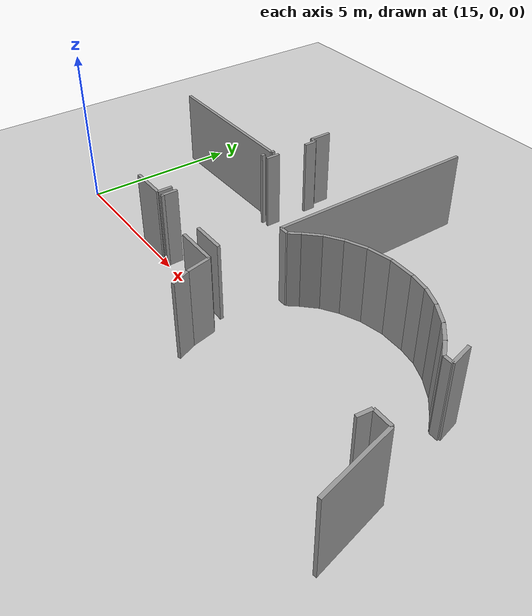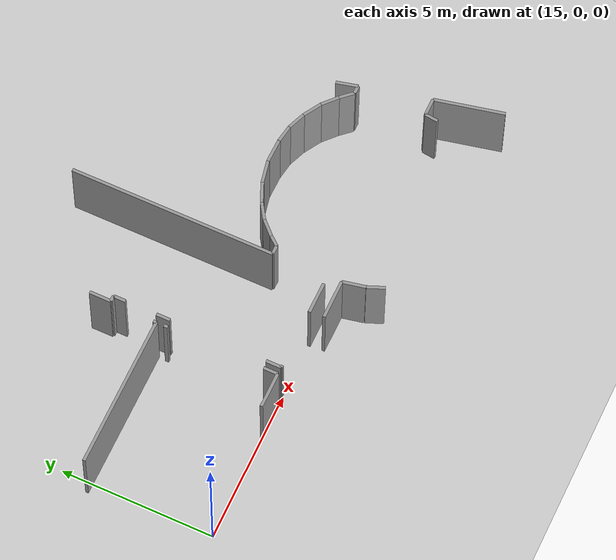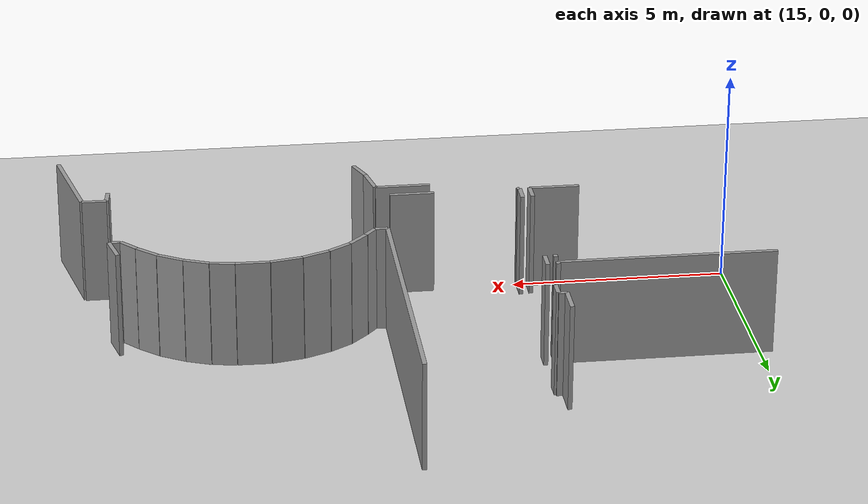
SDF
<sdf version="1.6">
 <world name="default">
  <model name="ground_plane">
   <static>1</static>
   <link name="link">
    <collision name="collision">
     <geometry><plane><normal>0 0 1</normal><size>100 100</size></plane></geometry>
     <surface><friction><ode><mu>100</mu><mu2>50</mu2></ode></friction></surface>
    </collision>
    <visual name="visual">
     <cast_shadows>0</cast_shadows>
     <geometry><plane><normal>0 0 1</normal><size>100 100</size></plane></geometry>
     <material>
      <script><uri>file://media/materials/scripts/gazebo.material</uri><name>Gazebo/Grey</name></script>
     </material>
    </visual>
   </link>
  </model>
  <model name="50041193">
   <static>1</static>
   <link name="Wall_119">
    <collision name="Wall_119_Collision">
     <geometry><box><size>1.27543304485 0.1 2.5</size></box></geometry>
     <pose>0.637716522424 0 1.25 0 0 0</pose>
    </collision>
    <visual name="Wall_119_Visual">
     <pose>0.637716522424 0 1.25 0 0 0</pose>
     <geometry><box><size>1.27543304485 0.1 2.5</size></box></geometry>
     <material>
      <script><uri>file://media/materials/scripts/gazebo.material</uri><name>Gazebo/Grey</name></script>
      <ambient>1 1 1 1</ambient>
     </material>
    </visual>
    <pose>53.6279182076 -53.474080852 0 0 0 0.0</pose>
   </link>
   <link name="Wall_120">
    <collision name="Wall_120_Collision">
     <geometry><box><size>0.751546595955 0.1 2.5</size></box></geometry>
     <pose>0.375773297978 0 1.25 0 0 0</pose>
    </collision>
    <visual name="Wall_120_Visual">
     <pose>0.375773297978 0 1.25 0 0 0</pose>
     <geometry><box><size>0.751546595955 0.1 2.5</size></box></geometry>
     <material>
      <script><uri>file://media/materials/scripts/gazebo.material</uri><name>Gazebo/Grey</name></script>
      <ambient>1 1 1 1</ambient>
     </material>
    </visual>
    <pose>54.9033512524 -53.474080852 0 0 0 -1.36507674603</pose>
   </link>
   <link name="Wall_121">
    <collision name="Wall_121_Collision">
     <geometry><box><size>0.593920546967 0.1 2.5</size></box></geometry>
     <pose>0.296960273483 0 1.25 0 0 0</pose>
    </collision>
    <visual name="Wall_121_Visual">
     <pose>0.296960273483 0 1.25 0 0 0</pose>
     <geometry><box><size>0.593920546967 0.1 2.5</size></box></geometry>
     <material>
      <script><uri>file://media/materials/scripts/gazebo.material</uri><name>Gazebo/Grey</name></script>
      <ambient>1 1 1 1</ambient>
     </material>
    </visual>
    <pose>55.0568708935 -54.2097805228 0 0 0 -1.1816674184</pose>
   </link>
   <link name="Wall_133">
    <collision name="Wall_133_Collision">
     <geometry><box><size>0.425947187988 0.1 2.5</size></box></geometry>
     <pose>0.212973593994 0 1.25 0 0 0</pose>
    </collision>
    <visual name="Wall_133_Visual">
     <pose>0.212973593994 0 1.25 0 0 0</pose>
     <geometry><box><size>0.425947187988 0.1 2.5</size></box></geometry>
     <material>
      <script><uri>file://media/materials/scripts/gazebo.material</uri><name>Gazebo/Grey</name></script>
      <ambient>1 1 1 1</ambient>
     </material>
    </visual>
    <pose>61.0785771474 -53.8691905906 0 0 0 1.45447195048</pose>
   </link>
   <link name="Wall_134">
    <collision name="Wall_134_Collision">
     <geometry><box><size>0.565913047899 0.1 2.5</size></box></geometry>
     <pose>0.282956523949 0 1.25 0 0 0</pose>
    </collision>
    <visual name="Wall_134_Visual">
     <pose>0.282956523949 0 1.25 0 0 0</pose>
     <geometry><box><size>0.565913047899 0.1 2.5</size></box></geometry>
     <material>
      <script><uri>file://media/materials/scripts/gazebo.material</uri><name>Gazebo/Grey</name></script>
      <ambient>1 1 1 1</ambient>
     </material>
    </visual>
    <pose>61.1280135219 -53.4461219769 0 0 0 0.0</pose>
   </link>
   <link name="Wall_135">
    <collision name="Wall_135_Collision">
     <geometry><box><size>2.26757541259 0.1 2.5</size></box></geometry>
     <pose>1.1337877063 0 1.25 0 0 0</pose>
    </collision>
    <visual name="Wall_135_Visual">
     <pose>1.1337877063 0 1.25 0 0 0</pose>
     <geometry><box><size>2.26757541259 0.1 2.5</size></box></geometry>
     <material>
      <script><uri>file://media/materials/scripts/gazebo.material</uri><name>Gazebo/Grey</name></script>
      <ambient>1 1 1 1</ambient>
     </material>
    </visual>
    <pose>61.6939265698 -53.4461219769 0 0 0 -1.35342826832</pose>
   </link>
   <link name="Wall_202">
    <collision name="Wall_202_Collision">
     <geometry><box><size>0.102304065475 0.1 2.5</size></box></geometry>
     <pose>0.0511520327373 0 1.25 0 0 0</pose>
    </collision>
    <visual name="Wall_202_Visual">
     <pose>0.0511520327373 0 1.25 0 0 0</pose>
     <geometry><box><size>0.102304065475 0.1 2.5</size></box></geometry>
     <material>
      <script><uri>file://media/materials/scripts/gazebo.material</uri><name>Gazebo/Grey</name></script>
      <ambient>1 1 1 1</ambient>
     </material>
    </visual>
    <pose>51.3459656614 -48.8995005528 0 0 0 -1.57079632679</pose>
   </link>
   <link name="Wall_203">
    <collision name="Wall_203_Collision">
     <geometry><box><size>4.94617916555 0.1 2.5</size></box></geometry>
     <pose>2.47308958278 0 1.25 0 0 0</pose>
    </collision>
    <visual name="Wall_203_Visual">
     <pose>2.47308958278 0 1.25 0 0 0</pose>
     <geometry><box><size>4.94617916555 0.1 2.5</size></box></geometry>
     <material>
      <script><uri>file://media/materials/scripts/gazebo.material</uri><name>Gazebo/Grey</name></script>
      <ambient>1 1 1 1</ambient>
     </material>
    </visual>
    <pose>51.3459656614 -49.0018046183 0 0 0 3.14159265359</pose>
   </link>
   <link name="Wall_290">
    <collision name="Wall_290_Collision">
     <geometry><box><size>6.71368841105 0.1 2.5</size></box></geometry>
     <pose>3.35684420552 0 1.25 0 0 0</pose>
    </collision>
    <visual name="Wall_290_Visual">
     <pose>3.35684420552 0 1.25 0 0 0</pose>
     <geometry><box><size>6.71368841105 0.1 2.5</size></box></geometry>
     <material>
      <script><uri>file://media/materials/scripts/gazebo.material</uri><name>Gazebo/Grey</name></script>
      <ambient>1 1 1 1</ambient>
     </material>
    </visual>
    <pose>54.8729777473 -51.199499282 0 0 0 1.57079632679</pose>
   </link>
   <link name="Wall_297">
    <collision name="Wall_297_Collision">
     <geometry><box><size>0.702463789494 0.1 2.5</size></box></geometry>
     <pose>0.351231894747 0 1.25 0 0 0</pose>
    </collision>
    <visual name="Wall_297_Visual">
     <pose>0.351231894747 0 1.25 0 0 0</pose>
     <geometry><box><size>0.702463789494 0.1 2.5</size></box></geometry>
     <material>
      <script><uri>file://media/materials/scripts/gazebo.material</uri><name>Gazebo/Grey</name></script>
      <ambient>1 1 1 1</ambient>
     </material>
    </visual>
    <pose>60.9779251973 -50.4917584862 0 0 0 -1.33152185805</pose>
   </link>
   <link name="Wall_298">
    <collision name="Wall_298_Collision">
     <geometry><box><size>0.263703025913 0.1 2.5</size></box></geometry>
     <pose>0.131851512956 0 1.25 0 0 0</pose>
    </collision>
    <visual name="Wall_298_Visual">
     <pose>0.131851512956 0 1.25 0 0 0</pose>
     <geometry><box><size>0.263703025913 0.1 2.5</size></box></geometry>
     <material>
      <script><uri>file://media/materials/scripts/gazebo.material</uri><name>Gazebo/Grey</name></script>
      <ambient>1 1 1 1</ambient>
     </material>
    </visual>
    <pose>61.1444075896 -51.1742092086 0 0 0 3.14159265359</pose>
   </link>
   <link name="Wall_299">
    <collision name="Wall_299_Collision">
     <geometry><box><size>0.503759629932 0.1 2.5</size></box></geometry>
     <pose>0.251879814966 0 1.25 0 0 0</pose>
    </collision>
    <visual name="Wall_299_Visual">
     <pose>0.251879814966 0 1.25 0 0 0</pose>
     <geometry><box><size>0.503759629932 0.1 2.5</size></box></geometry>
     <material>
      <script><uri>file://media/materials/scripts/gazebo.material</uri><name>Gazebo/Grey</name></script>
      <ambient>1 1 1 1</ambient>
     </material>
    </visual>
    <pose>60.8807045637 -51.1742092086 0 0 0 2.31051200912</pose>
   </link>
   <link name="Wall_300">
    <collision name="Wall_300_Collision">
     <geometry><box><size>0.598465363036 0.1 2.5</size></box></geometry>
     <pose>0.299232681518 0 1.25 0 0 0</pose>
    </collision>
    <visual name="Wall_300_Visual">
     <pose>0.299232681518 0 1.25 0 0 0</pose>
     <geometry><box><size>0.598465363036 0.1 2.5</size></box></geometry>
     <material>
      <script><uri>file://media/materials/scripts/gazebo.material</uri><name>Gazebo/Grey</name></script>
      <ambient>1 1 1 1</ambient>
     </material>
    </visual>
    <pose>60.5411313178 -50.8021019991 0 0 0 2.40742012228</pose>
   </link>
   <link name="Wall_301">
    <collision name="Wall_301_Collision">
     <geometry><box><size>0.649745379129 0.1 2.5</size></box></geometry>
     <pose>0.324872689564 0 1.25 0 0 0</pose>
    </collision>
    <visual name="Wall_301_Visual">
     <pose>0.324872689564 0 1.25 0 0 0</pose>
     <geometry><box><size>0.649745379129 0.1 2.5</size></box></geometry>
     <material>
      <script><uri>file://media/materials/scripts/gazebo.material</uri><name>Gazebo/Grey</name></script>
      <ambient>1 1 1 1</ambient>
     </material>
    </visual>
    <pose>60.0968393763 -50.4011463139 0 0 0 2.60764718316</pose>
   </link>
   <link name="Wall_302">
    <collision name="Wall_302_Collision">
     <geometry><box><size>0.600564026487 0.1 2.5</size></box></geometry>
     <pose>0.300282013244 0 1.25 0 0 0</pose>
    </collision>
    <visual name="Wall_302_Visual">
     <pose>0.300282013244 0 1.25 0 0 0</pose>
     <geometry><box><size>0.600564026487 0.1 2.5</size></box></geometry>
     <material>
      <script><uri>file://media/materials/scripts/gazebo.material</uri><name>Gazebo/Grey</name></script>
      <ambient>1 1 1 1</ambient>
     </material>
    </visual>
    <pose>59.5375347897 -50.0704690737 0 0 0 2.7670198755</pose>
   </link>
   <link name="Wall_303">
    <collision name="Wall_303_Collision">
     <geometry><box><size>0.563910593662 0.1 2.5</size></box></geometry>
     <pose>0.281955296831 0 1.25 0 0 0</pose>
    </collision>
    <visual name="Wall_303_Visual">
     <pose>0.281955296831 0 1.25 0 0 0</pose>
     <geometry><box><size>0.563910593662 0.1 2.5</size></box></geometry>
     <material>
      <script><uri>file://media/materials/scripts/gazebo.material</uri><name>Gazebo/Grey</name></script>
      <ambient>1 1 1 1</ambient>
     </material>
    </visual>
    <pose>58.9786114606 -49.850737733 0 0 0 2.98363169974</pose>
   </link>
   <link name="Wall_304">
    <collision name="Wall_304_Collision">
     <geometry><box><size>0.772911131109 0.1 2.5</size></box></geometry>
     <pose>0.386455565554 0 1.25 0 0 0</pose>
    </collision>
    <visual name="Wall_304_Visual">
     <pose>0.386455565554 0 1.25 0 0 0</pose>
     <geometry><box><size>0.772911131109 0.1 2.5</size></box></geometry>
     <material>
      <script><uri>file://media/materials/scripts/gazebo.material</uri><name>Gazebo/Grey</name></script>
      <ambient>1 1 1 1</ambient>
     </material>
    </visual>
    <pose>58.4217215042 -49.7620318477 0 0 0 3.12531387462</pose>
   </link>
   <link name="Wall_305">
    <collision name="Wall_305_Collision">
     <geometry><box><size>0.746290253607 0.1 2.5</size></box></geometry>
     <pose>0.373145126804 0 1.25 0 0 0</pose>
    </collision>
    <visual name="Wall_305_Visual">
     <pose>0.373145126804 0 1.25 0 0 0</pose>
     <geometry><box><size>0.746290253607 0.1 2.5</size></box></geometry>
     <material>
      <script><uri>file://media/materials/scripts/gazebo.material</uri><name>Gazebo/Grey</name></script>
      <ambient>1 1 1 1</ambient>
     </material>
    </visual>
    <pose>57.648912781 -49.7494503539 0 0 0 -2.93544706657</pose>
   </link>
   <link name="Wall_306">
    <collision name="Wall_306_Collision">
     <geometry><box><size>0.671609184807 0.1 2.5</size></box></geometry>
     <pose>0.335804592404 0 1.25 0 0 0</pose>
    </collision>
    <visual name="Wall_306_Visual">
     <pose>0.335804592404 0 1.25 0 0 0</pose>
     <geometry><box><size>0.671609184807 0.1 2.5</size></box></geometry>
     <material>
      <script><uri>file://media/materials/scripts/gazebo.material</uri><name>Gazebo/Grey</name></script>
      <ambient>1 1 1 1</ambient>
     </material>
    </visual>
    <pose>56.9184236278 -49.9022074803 0 0 0 -2.73603000995</pose>
   </link>
   <link name="Wall_307">
    <collision name="Wall_307_Collision">
     <geometry><box><size>0.592899953283 0.1 2.5</size></box></geometry>
     <pose>0.296449976642 0 1.25 0 0 0</pose>
    </collision>
    <visual name="Wall_307_Visual">
     <pose>0.296449976642 0 1.25 0 0 0</pose>
     <geometry><box><size>0.592899953283 0.1 2.5</size></box></geometry>
     <material>
      <script><uri>file://media/materials/scripts/gazebo.material</uri><name>Gazebo/Grey</name></script>
      <ambient>1 1 1 1</ambient>
     </material>
    </visual>
    <pose>56.3012950043 -50.1671813641 0 0 0 -2.5653612067</pose>
   </link>
   <link name="Wall_308">
    <collision name="Wall_308_Collision">
     <geometry><box><size>0.582724418715 0.1 2.5</size></box></geometry>
     <pose>0.291362209357 0 1.25 0 0 0</pose>
    </collision>
    <visual name="Wall_308_Visual">
     <pose>0.291362209357 0 1.25 0 0 0</pose>
     <geometry><box><size>0.582724418715 0.1 2.5</size></box></geometry>
     <material>
      <script><uri>file://media/materials/scripts/gazebo.material</uri><name>Gazebo/Grey</name></script>
      <ambient>1 1 1 1</ambient>
     </material>
    </visual>
    <pose>55.8041353718 -50.4902334566 0 0 0 -2.34293185023</pose>
   </link>
   <link name="Wall_309">
    <collision name="Wall_309_Collision">
     <geometry><box><size>0.378673128936 0.1 2.5</size></box></geometry>
     <pose>0.189336564468 0 1.25 0 0 0</pose>
    </collision>
    <visual name="Wall_309_Visual">
     <pose>0.189336564468 0 1.25 0 0 0</pose>
     <geometry><box><size>0.378673128936 0.1 2.5</size></box></geometry>
     <material>
      <script><uri>file://media/materials/scripts/gazebo.material</uri><name>Gazebo/Grey</name></script>
      <ambient>1 1 1 1</ambient>
     </material>
    </visual>
    <pose>55.3975879116 -50.9077102952 0 0 0 -2.25659667763</pose>
   </link>
   <link name="Wall_310">
    <collision name="Wall_310_Collision">
     <geometry><box><size>0.284802103442 0.1 2.5</size></box></geometry>
     <pose>0.142401051721 0 1.25 0 0 0</pose>
    </collision>
    <visual name="Wall_310_Visual">
     <pose>0.142401051721 0 1.25 0 0 0</pose>
     <geometry><box><size>0.284802103442 0.1 2.5</size></box></geometry>
     <material>
      <script><uri>file://media/materials/scripts/gazebo.material</uri><name>Gazebo/Grey</name></script>
      <ambient>1 1 1 1</ambient>
     </material>
    </visual>
    <pose>55.1577770153 -51.2007701399 0 0 0 3.13713038959</pose>
   </link>
   <link name="Wall_316">
    <collision name="Wall_316_Collision">
     <geometry><box><size>1.03371586158 0.1 2.5</size></box></geometry>
     <pose>0.516857930789 0 1.25 0 0 0</pose>
    </collision>
    <visual name="Wall_316_Visual">
     <pose>0.516857930789 0 1.25 0 0 0</pose>
     <geometry><box><size>1.03371586158 0.1 2.5</size></box></geometry>
     <material>
      <script><uri>file://media/materials/scripts/gazebo.material</uri><name>Gazebo/Grey</name></script>
      <ambient>1 1 1 1</ambient>
     </material>
    </visual>
    <pose>54.6184248986 -53.0135219287 0 0 0 3.14159265359</pose>
   </link>
   <link name="Wall_317">
    <collision name="Wall_317_Collision">
     <geometry><box><size>0.0710409597519 0.1 2.5</size></box></geometry>
     <pose>0.035520479876 0 1.25 0 0 0</pose>
    </collision>
    <visual name="Wall_317_Visual">
     <pose>0.035520479876 0 1.25 0 0 0</pose>
     <geometry><box><size>0.0710409597519 0.1 2.5</size></box></geometry>
     <material>
      <script><uri>file://media/materials/scripts/gazebo.material</uri><name>Gazebo/Grey</name></script>
      <ambient>1 1 1 1</ambient>
     </material>
    </visual>
    <pose>51.6573258607 -53.0135219287 0 0 0 3.14159265359</pose>
   </link>
   <link name="Wall_318">
    <collision name="Wall_318_Collision">
     <geometry><box><size>0.49652420349 0.1 2.5</size></box></geometry>
     <pose>0.248262101745 0 1.25 0 0 0</pose>
    </collision>
    <visual name="Wall_318_Visual">
     <pose>0.248262101745 0 1.25 0 0 0</pose>
     <geometry><box><size>0.49652420349 0.1 2.5</size></box></geometry>
     <material>
      <script><uri>file://media/materials/scripts/gazebo.material</uri><name>Gazebo/Grey</name></script>
      <ambient>1 1 1 1</ambient>
     </material>
    </visual>
    <pose>51.5862849009 -53.0135219287 0 0 0 1.57079632679</pose>
   </link>
   <link name="Wall_319">
    <collision name="Wall_319_Collision">
     <geometry><box><size>0.452933775592 0.1 2.5</size></box></geometry>
     <pose>0.226466887796 0 1.25 0 0 0</pose>
    </collision>
    <visual name="Wall_319_Visual">
     <pose>0.226466887796 0 1.25 0 0 0</pose>
     <geometry><box><size>0.452933775592 0.1 2.5</size></box></geometry>
     <material>
      <script><uri>file://media/materials/scripts/gazebo.material</uri><name>Gazebo/Grey</name></script>
      <ambient>1 1 1 1</ambient>
     </material>
    </visual>
    <pose>51.5862849009 -49.3439195801 0 0 0 1.57079632679</pose>
   </link>
   <link name="Wall_320">
    <collision name="Wall_320_Collision">
     <geometry><box><size>0.400447342001 0.1 2.5</size></box></geometry>
     <pose>0.200223671 0 1.25 0 0 0</pose>
    </collision>
    <visual name="Wall_320_Visual">
     <pose>0.200223671 0 1.25 0 0 0</pose>
     <geometry><box><size>0.400447342001 0.1 2.5</size></box></geometry>
     <material>
      <script><uri>file://media/materials/scripts/gazebo.material</uri><name>Gazebo/Grey</name></script>
      <ambient>1 1 1 1</ambient>
     </material>
    </visual>
    <pose>51.5862849009 -47.8645138333 0 0 0 1.57079632679</pose>
   </link>
   <link name="Wall_321">
    <collision name="Wall_321_Collision">
     <geometry><box><size>0.184909832628 0.1 2.5</size></box></geometry>
     <pose>0.092454916314 0 1.25 0 0 0</pose>
    </collision>
    <visual name="Wall_321_Visual">
     <pose>0.092454916314 0 1.25 0 0 0</pose>
     <geometry><box><size>0.184909832628 0.1 2.5</size></box></geometry>
     <material>
      <script><uri>file://media/materials/scripts/gazebo.material</uri><name>Gazebo/Grey</name></script>
      <ambient>1 1 1 1</ambient>
     </material>
    </visual>
    <pose>51.5862849009 -47.4640664913 0 0 0 3.14159265359</pose>
   </link>
   <link name="Wall_322">
    <collision name="Wall_322_Collision">
     <geometry><box><size>0.708122053198 0.1 2.5</size></box></geometry>
     <pose>0.354061026599 0 1.25 0 0 0</pose>
    </collision>
    <visual name="Wall_322_Visual">
     <pose>0.354061026599 0 1.25 0 0 0</pose>
     <geometry><box><size>0.708122053198 0.1 2.5</size></box></geometry>
     <material>
      <script><uri>file://media/materials/scripts/gazebo.material</uri><name>Gazebo/Grey</name></script>
      <ambient>1 1 1 1</ambient>
     </material>
    </visual>
    <pose>51.4013750683 -47.4640664913 0 0 0 1.57079632679</pose>
   </link>
   <link name="Wall_328">
    <collision name="Wall_328_Collision">
     <geometry><box><size>0.124289908117 0.1 2.5</size></box></geometry>
     <pose>0.0621449540585 0 1.25 0 0 0</pose>
    </collision>
    <visual name="Wall_328_Visual">
     <pose>0.0621449540585 0 1.25 0 0 0</pose>
     <geometry><box><size>0.124289908117 0.1 2.5</size></box></geometry>
     <material>
      <script><uri>file://media/materials/scripts/gazebo.material</uri><name>Gazebo/Grey</name></script>
      <ambient>1 1 1 1</ambient>
     </material>
    </visual>
    <pose>51.3487615489 -49.2582637539 0 0 0 -1.57079632679</pose>
   </link>
   <link name="Wall_329">
    <collision name="Wall_329_Collision">
     <geometry><box><size>0.463863154015 0.1 2.5</size></box></geometry>
     <pose>0.231931577008 0 1.25 0 0 0</pose>
    </collision>
    <visual name="Wall_329_Visual">
     <pose>0.231931577008 0 1.25 0 0 0</pose>
     <geometry><box><size>0.463863154015 0.1 2.5</size></box></geometry>
     <material>
      <script><uri>file://media/materials/scripts/gazebo.material</uri><name>Gazebo/Grey</name></script>
      <ambient>1 1 1 1</ambient>
     </material>
    </visual>
    <pose>51.3487615489 -52.5469899729 0 0 0 -1.57079632679</pose>
   </link>
   <link name="Wall_330">
    <collision name="Wall_330_Collision">
     <geometry><box><size>1.15749742651 0.1 2.5</size></box></geometry>
     <pose>0.578748713256 0 1.25 0 0 0</pose>
    </collision>
    <visual name="Wall_330_Visual">
     <pose>0.578748713256 0 1.25 0 0 0</pose>
     <geometry><box><size>1.15749742651 0.1 2.5</size></box></geometry>
     <material>
      <script><uri>file://media/materials/scripts/gazebo.material</uri><name>Gazebo/Grey</name></script>
      <ambient>1 1 1 1</ambient>
     </material>
    </visual>
    <pose>51.3487615489 -53.0108531269 0 0 0 3.14159265359</pose>
   </link>
   <pose>-31.7 53.0309199741 0 0 0 0</pose>
  </model>
 </world>
</sdf>
